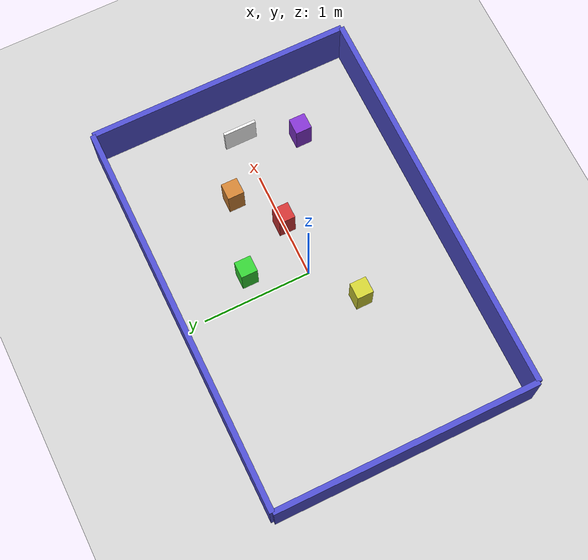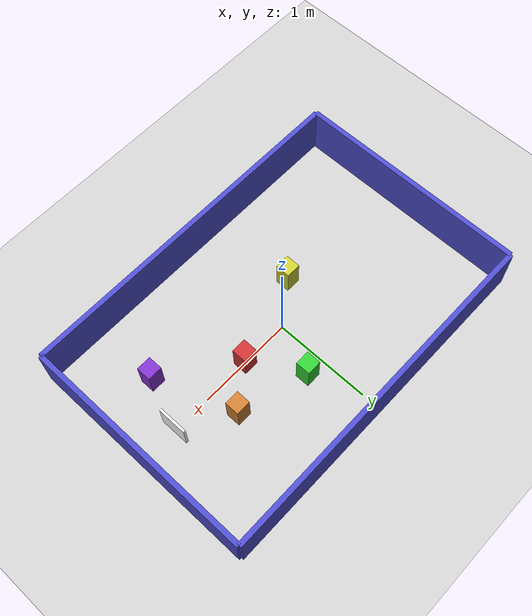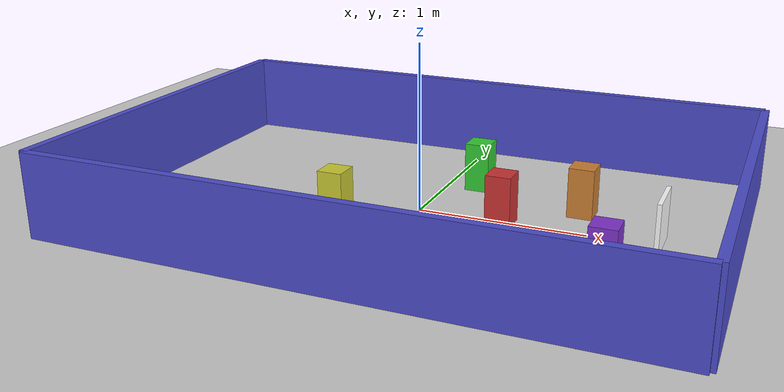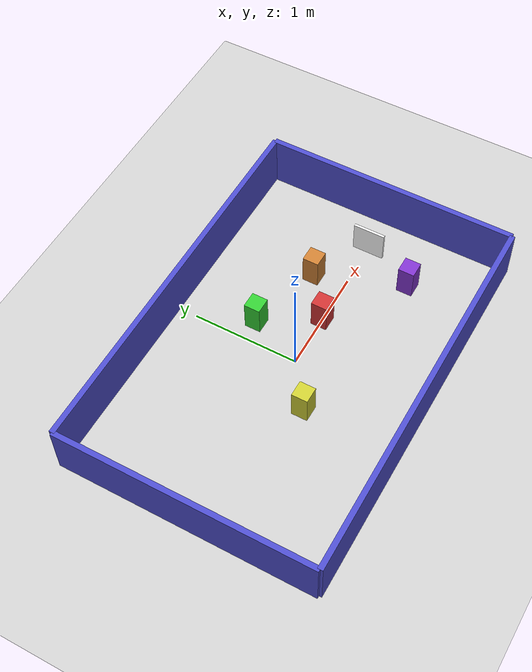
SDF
<?xml version="1.0" ?>
<sdf version="1.8">
  <world name="arena">
    <physics name="1ms" type="ignored">
      <max_step_size>0.001</max_step_size>
      <real_time_factor>1.0</real_time_factor>
    </physics>
    <plugin filename="gz-sim-physics-system" name="gz::sim::systems::Physics"/>
    <plugin filename="gz-sim-user-commands-system" name="gz::sim::systems::UserCommands"/>
    <plugin filename="gz-sim-scene-broadcaster-system" name="gz::sim::systems::SceneBroadcaster"/>
    <plugin filename="gz-sim-sensors-system" name="gz::sim::systems::Sensors">
      <render_engine>ogre</render_engine>
    </plugin>
    <plugin filename="gz-sim-imu-system" name="gz::sim::systems::Imu"/>
    <light name="sun" type="directional">
      <cast_shadows>true</cast_shadows>
      <pose>0 0 10 0 0 0</pose>
      <diffuse>0.8 0.8 0.8 1</diffuse>
      <specular>0.2 0.2 0.2 1</specular>
      <direction>-0.5 0.1 -0.9</direction>
    </light>
    <model name="ground_plane">
      <static>true</static>
      <link name="link">
        <collision name="collision">
          <geometry><plane><normal>0 0 1</normal><size>10 10</size></plane></geometry>
        </collision>
        <visual name="visual">
          <geometry><plane><normal>0 0 1</normal><size>10 10</size></plane></geometry>
          <material><ambient>0.8 0.8 0.8 1</ambient><diffuse>0.8 0.8 0.8 1</diffuse></material>
        </visual>
      </link>
    </model>
    <model name="wall_north">
      <static>true</static><pose>0 1.2 0.25 0 0 0</pose>
      <link name="link">
        <collision name="collision"><geometry><box><size>3.6 0.05 0.5</size></box></geometry></collision>
        <visual name="visual"><geometry><box><size>3.6 0.05 0.5</size></box></geometry>
          <material><ambient>0.3 0.3 0.8 1</ambient><diffuse>0.3 0.3 0.8 1</diffuse></material></visual>
      </link>
    </model>
    <model name="wall_south">
      <static>true</static><pose>0 -1.2 0.25 0 0 0</pose>
      <link name="link">
        <collision name="collision"><geometry><box><size>3.6 0.05 0.5</size></box></geometry></collision>
        <visual name="visual"><geometry><box><size>3.6 0.05 0.5</size></box></geometry>
          <material><ambient>0.3 0.3 0.8 1</ambient><diffuse>0.3 0.3 0.8 1</diffuse></material></visual>
      </link>
    </model>
    <model name="wall_east">
      <static>true</static><pose>1.8 0 0.25 0 0 0</pose>
      <link name="link">
        <collision name="collision"><geometry><box><size>0.05 2.4 0.5</size></box></geometry></collision>
        <visual name="visual"><geometry><box><size>0.05 2.4 0.5</size></box></geometry>
          <material><ambient>0.3 0.3 0.8 1</ambient><diffuse>0.3 0.3 0.8 1</diffuse></material></visual>
      </link>
    </model>
    <model name="wall_west">
      <static>true</static><pose>-1.8 0 0.25 0 0 0</pose>
      <link name="link">
        <collision name="collision"><geometry><box><size>0.05 2.4 0.5</size></box></geometry></collision>
        <visual name="visual"><geometry><box><size>0.05 2.4 0.5</size></box></geometry>
          <material><ambient>0.3 0.3 0.8 1</ambient><diffuse>0.3 0.3 0.8 1</diffuse></material></visual>
      </link>
    </model>
    <model name="obstacle_1">
      <static>true</static><pose>0.5 0.0 0.15 0 0 0</pose>
      <link name="link">
        <collision name="collision"><geometry><box><size>0.15 0.15 0.3</size></box></geometry></collision>
        <visual name="visual"><geometry><box><size>0.15 0.15 0.3</size></box></geometry>
          <material><ambient>0.8 0.2 0.2 1</ambient><diffuse>0.8 0.2 0.2 1</diffuse></material></visual>
      </link>
    </model>
    <model name="obstacle_2">
      <static>true</static><pose>0.9 0.3 0.15 0 0 0</pose>
      <link name="link">
        <collision name="collision"><geometry><box><size>0.15 0.15 0.3</size></box></geometry></collision>
        <visual name="visual"><geometry><box><size>0.15 0.15 0.3</size></box></geometry>
          <material><ambient>0.8 0.5 0.2 1</ambient><diffuse>0.8 0.5 0.2 1</diffuse></material></visual>
      </link>
    </model>
    <model name="obstacle_3">
      <static>true</static><pose>0.2 0.5 0.15 0 0 0</pose>
      <link name="link">
        <collision name="collision"><geometry><box><size>0.15 0.15 0.3</size></box></geometry></collision>
        <visual name="visual"><geometry><box><size>0.15 0.15 0.3</size></box></geometry>
          <material><ambient>0.2 0.8 0.2 1</ambient><diffuse>0.2 0.8 0.2 1</diffuse></material></visual>
      </link>
    </model>
    <model name="obstacle_4">
      <static>true</static><pose>-0.4 -0.3 0.15 0 0 0</pose>
      <link name="link">
        <collision name="collision"><geometry><box><size>0.15 0.15 0.3</size></box></geometry></collision>
        <visual name="visual"><geometry><box><size>0.15 0.15 0.3</size></box></geometry>
          <material><ambient>0.8 0.8 0.2 1</ambient><diffuse>0.8 0.8 0.2 1</diffuse></material></visual>
      </link>
    </model>
    <model name="obstacle_5">
      <static>true</static><pose>1.2 -0.5 0.15 0 0 0</pose>
      <link name="link">
        <collision name="collision"><geometry><box><size>0.15 0.15 0.3</size></box></geometry></collision>
        <visual name="visual"><geometry><box><size>0.15 0.15 0.3</size></box></geometry>
          <material><ambient>0.5 0.2 0.8 1</ambient><diffuse>0.5 0.2 0.8 1</diffuse></material></visual>
      </link>
    </model>
    <include>
      <uri>model://teddy_bear</uri>
      <pose>1.4 0.0 0.15 0 0 0</pose>
    </include>
  </world>
</sdf>

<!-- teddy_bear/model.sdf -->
<sdf version="1.10">
  <model name="teddy_bear">
    <static>true</static>
    <link name="link">
      <collision name="collision">
        <geometry><box><size>0.025 0.3 0.3</size></box></geometry>
      </collision>
      <visual name="visual">
        <geometry><box><size>0.025 0.3 0.3</size></box></geometry>
        <material>
          <double_sided>1</double_sided>
          <diffuse>1 1 1 1</diffuse>
          <specular>0.1 0.1 0.1 1</specular>
          <pbr>
            <metal>
              <albedo_map>materials/textures/teddybearsim.png</albedo_map>
              <metalness>0.0</metalness>
              <roughness>0.9</roughness>
            </metal>
          </pbr>
        </material>
      </visual>
    </link>
  </model>
</sdf>
